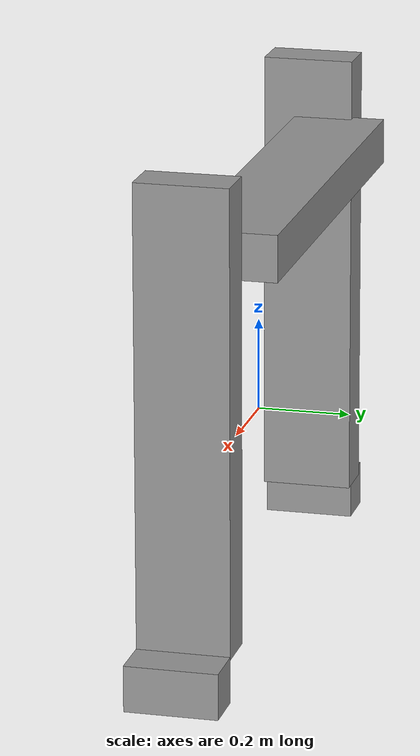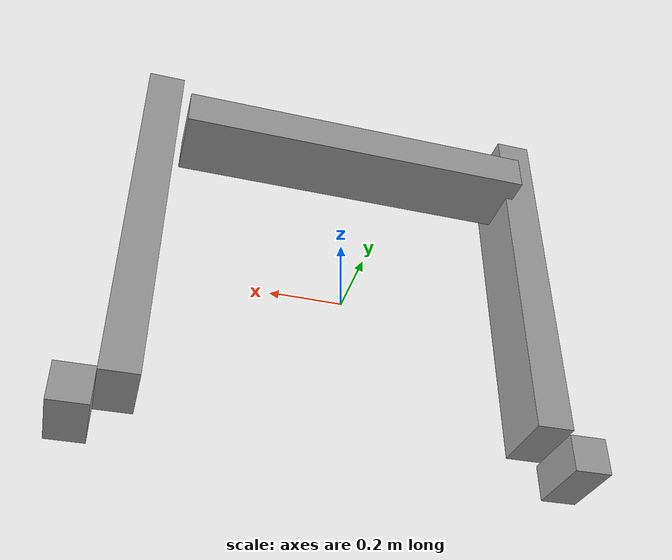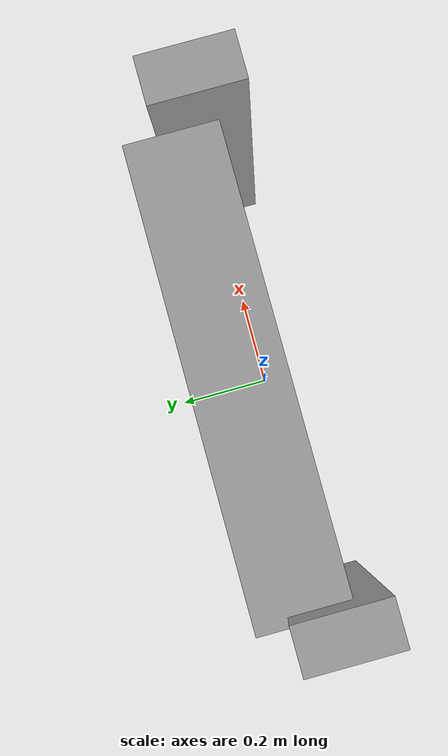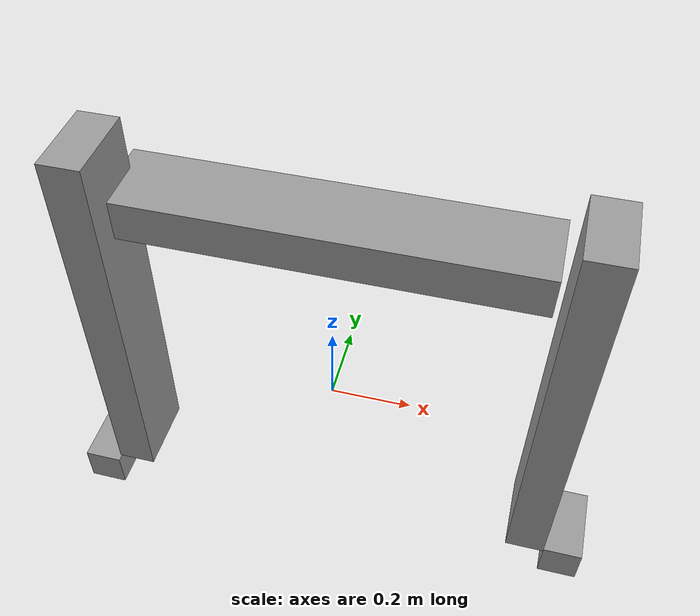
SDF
<?xml version='1.0'?>
<sdf version='1.6'>
  <model name='model'>
    <link name='link_0'>
      <pose frame=''>-0.018264 0.058854 0.476808 0 -0 0</pose>
      <inertial>
        <mass>1</mass>
        <inertia>
          <ixx>0.166667</ixx>
          <ixy>0</ixy>
          <ixz>0</ixz>
          <iyy>0.166667</iyy>
          <iyz>0</iyz>
          <izz>0.166667</izz>
        </inertia>
        <pose frame=''>0 0 0 0 -0 0</pose>
      </inertial>
      <gravity>1</gravity>
      <self_collide>0</self_collide>
      <kinematic>0</kinematic>
      <visual name='visual'>
        <pose frame=''>0 0 0 0 -0 0</pose>
        <geometry>
          <box>
            <size>1 0.2 0.1</size>
          </box>
        </geometry>
        <material>
          <lighting>1</lighting>
          <script>
            <uri>file://media/materials/scripts/gazebo.material</uri>
            <name>Gazebo/Grey</name>
          </script>
          <ambient>0.3 0.3 0.3 1</ambient>
          <diffuse>0.7 0.7 0.7 1</diffuse>
          <specular>0.01 0.01 0.01 1</specular>
          <emissive>0 0 0 1</emissive>
          <shader type='vertex'>
            <normal_map>__default__</normal_map>
          </shader>
        </material>
        <cast_shadows>1</cast_shadows>
        <transparency>0</transparency>
      </visual>
      <collision name='collision'>
        <laser_retro>0</laser_retro>
        <max_contacts>10</max_contacts>
        <pose frame=''>0 0 0 0 -0 0</pose>
        <geometry>
          <box>
            <size>1 0.2 0.1</size>
          </box>
        </geometry>
        <surface>
          <friction>
            <ode>
              <mu>1</mu>
              <mu2>1</mu2>
              <fdir1>0 0 0</fdir1>
              <slip1>0</slip1>
              <slip2>0</slip2>
            </ode>
            <torsional>
              <coefficient>1</coefficient>
              <patch_radius>0</patch_radius>
              <surface_radius>0</surface_radius>
              <use_patch_radius>1</use_patch_radius>
              <ode>
                <slip>0</slip>
              </ode>
            </torsional>
          </friction>
          <bounce>
            <restitution_coefficient>0</restitution_coefficient>
            <threshold>1e+06</threshold>
          </bounce>
          <contact>
            <collide_without_contact>0</collide_without_contact>
            <collide_without_contact_bitmask>1</collide_without_contact_bitmask>
            <collide_bitmask>1</collide_bitmask>
            <ode>
              <soft_cfm>0</soft_cfm>
              <soft_erp>0.2</soft_erp>
              <kp>1e+13</kp>
              <kd>1</kd>
              <max_vel>0.01</max_vel>
              <min_depth>0</min_depth>
            </ode>
            <bullet>
              <split_impulse>1</split_impulse>
              <split_impulse_penetration_threshold>-0.01</split_impulse_penetration_threshold>
              <soft_cfm>0</soft_cfm>
              <soft_erp>0.2</soft_erp>
              <kp>1e+13</kp>
              <kd>1</kd>
            </bullet>
          </contact>
        </surface>
      </collision>
    </link>
    <link name='link_0_clone'>
      <pose frame=''>0.554218 -0.010327 0.150666 0 -0 0</pose>
      <inertial>
        <mass>1</mass>
        <inertia>
          <ixx>0.166667</ixx>
          <ixy>0</ixy>
          <ixz>0</ixz>
          <iyy>0.166667</iyy>
          <iyz>0</iyz>
          <izz>0.166667</izz>
        </inertia>
        <pose frame=''>0 0 0 0 -0 0</pose>
      </inertial>
      <self_collide>0</self_collide>
      <kinematic>0</kinematic>
      <gravity>1</gravity>
      <visual name='visual'>
        <pose frame=''>0 0 0 0 1.57 0</pose>
        <geometry>
          <box>
            <size>1 0.2 0.1</size>
          </box>
        </geometry>
        <material>
          <lighting>1</lighting>
          <script>
            <uri>file://media/materials/scripts/gazebo.material</uri>
            <name>Gazebo/Grey</name>
          </script>
          <ambient>0.3 0.3 0.3 1</ambient>
          <diffuse>0.7 0.7 0.7 1</diffuse>
          <specular>0.01 0.01 0.01 1</specular>
          <emissive>0 0 0 1</emissive>
          <shader type='vertex'>
            <normal_map>__default__</normal_map>
          </shader>
        </material>
        <cast_shadows>1</cast_shadows>
        <transparency>0</transparency>
      </visual>
      <collision name='collision'>
        <laser_retro>0</laser_retro>
        <max_contacts>10</max_contacts>
        <pose frame=''>0 0 0 0 1.57 0</pose>
        <geometry>
          <box>
            <size>1 0.2 0.1</size>
          </box>
        </geometry>
        <surface>
          <friction>
            <ode>
              <mu>1</mu>
              <mu2>1</mu2>
              <fdir1>0 0 0</fdir1>
              <slip1>0</slip1>
              <slip2>0</slip2>
            </ode>
            <torsional>
              <coefficient>1</coefficient>
              <patch_radius>0</patch_radius>
              <surface_radius>0</surface_radius>
              <use_patch_radius>1</use_patch_radius>
              <ode>
                <slip>0</slip>
              </ode>
            </torsional>
          </friction>
          <bounce>
            <restitution_coefficient>0</restitution_coefficient>
            <threshold>1e+06</threshold>
          </bounce>
          <contact>
            <collide_without_contact>0</collide_without_contact>
            <collide_without_contact_bitmask>1</collide_without_contact_bitmask>
            <collide_bitmask>1</collide_bitmask>
            <ode>
              <soft_cfm>0</soft_cfm>
              <soft_erp>0.2</soft_erp>
              <kp>1e+13</kp>
              <kd>1</kd>
              <max_vel>0.01</max_vel>
              <min_depth>0</min_depth>
            </ode>
            <bullet>
              <split_impulse>1</split_impulse>
              <split_impulse_penetration_threshold>-0.01</split_impulse_penetration_threshold>
              <soft_cfm>0</soft_cfm>
              <soft_erp>0.2</soft_erp>
              <kp>1e+13</kp>
              <kd>1</kd>
            </bullet>
          </contact>
        </surface>
      </collision>
    </link>
    <link name='link_0_clone_clone'>
      <pose frame=''>-0.546578 -0.010327 0.158876 0 -0 0</pose>
      <inertial>
        <mass>1</mass>
        <inertia>
          <ixx>0.166667</ixx>
          <ixy>0</ixy>
          <ixz>0</ixz>
          <iyy>0.166667</iyy>
          <iyz>0</iyz>
          <izz>0.166667</izz>
        </inertia>
        <pose frame=''>0 0 0 0 -0 0</pose>
      </inertial>
      <self_collide>0</self_collide>
      <kinematic>0</kinematic>
      <visual name='visual'>
        <pose frame=''>0 0 0 0 1.57 0</pose>
        <geometry>
          <box>
            <size>1 0.2 0.1</size>
          </box>
        </geometry>
        <material>
          <lighting>1</lighting>
          <script>
            <uri>file://media/materials/scripts/gazebo.material</uri>
            <name>Gazebo/Grey</name>
          </script>
          <ambient>0.3 0.3 0.3 1</ambient>
          <diffuse>0.7 0.7 0.7 1</diffuse>
          <specular>0.01 0.01 0.01 1</specular>
          <emissive>0 0 0 1</emissive>
          <shader type='vertex'>
            <normal_map>__default__</normal_map>
          </shader>
        </material>
        <cast_shadows>1</cast_shadows>
        <transparency>0</transparency>
      </visual>
      <collision name='collision'>
        <laser_retro>0</laser_retro>
        <max_contacts>10</max_contacts>
        <pose frame=''>0 0 0 0 1.57 0</pose>
        <geometry>
          <box>
            <size>1 0.2 0.1</size>
          </box>
        </geometry>
        <surface>
          <friction>
            <ode>
              <mu>1</mu>
              <mu2>1</mu2>
              <fdir1>0 0 0</fdir1>
              <slip1>0</slip1>
              <slip2>0</slip2>
            </ode>
            <torsional>
              <coefficient>1</coefficient>
              <patch_radius>0</patch_radius>
              <surface_radius>0</surface_radius>
              <use_patch_radius>1</use_patch_radius>
              <ode>
                <slip>0</slip>
              </ode>
            </torsional>
          </friction>
          <bounce>
            <restitution_coefficient>0</restitution_coefficient>
            <threshold>1e+06</threshold>
          </bounce>
          <contact>
            <collide_without_contact>0</collide_without_contact>
            <collide_without_contact_bitmask>1</collide_without_contact_bitmask>
            <collide_bitmask>1</collide_bitmask>
            <ode>
              <soft_cfm>0</soft_cfm>
              <soft_erp>0.2</soft_erp>
              <kp>1e+13</kp>
              <kd>1</kd>
              <max_vel>0.01</max_vel>
              <min_depth>0</min_depth>
            </ode>
            <bullet>
              <split_impulse>1</split_impulse>
              <split_impulse_penetration_threshold>-0.01</split_impulse_penetration_threshold>
              <soft_cfm>0</soft_cfm>
              <soft_erp>0.2</soft_erp>
              <kp>1e+13</kp>
              <kd>1</kd>
            </bullet>
          </contact>
        </surface>
      </collision>
    </link>
    <link name='link_1'>
      <pose frame=''>0.654616 -0.010327 -0.392054 0 -0 0</pose>
      <inertial>
        <mass>1</mass>
        <inertia>
          <ixx>0.166667</ixx>
          <ixy>0</ixy>
          <ixz>0</ixz>
          <iyy>0.166667</iyy>
          <iyz>0</iyz>
          <izz>0.166667</izz>
        </inertia>
        <pose frame=''>0 0 0 0 -0 0</pose>
      </inertial>
      <gravity>1</gravity>
      <self_collide>0</self_collide>
      <kinematic>0</kinematic>
      <visual name='visual'>
        <pose frame=''>0 0 0 0 -0 0</pose>
        <geometry>
          <box>
            <size>0.1 0.2 0.1</size>
          </box>
        </geometry>
        <material>
          <lighting>1</lighting>
          <script>
            <uri>file://media/materials/scripts/gazebo.material</uri>
            <name>Gazebo/Grey</name>
          </script>
          <ambient>0.3 0.3 0.3 1</ambient>
          <diffuse>0.7 0.7 0.7 1</diffuse>
          <specular>0.01 0.01 0.01 1</specular>
          <emissive>0 0 0 1</emissive>
          <shader type='vertex'>
            <normal_map>__default__</normal_map>
          </shader>
        </material>
        <cast_shadows>1</cast_shadows>
        <transparency>0</transparency>
      </visual>
      <collision name='collision'>
        <laser_retro>0</laser_retro>
        <max_contacts>10</max_contacts>
        <pose frame=''>0 0 0 0 -0 0</pose>
        <geometry>
          <box>
            <size>0.1 0.2 0.1</size>
          </box>
        </geometry>
        <surface>
          <friction>
            <ode>
              <mu>1</mu>
              <mu2>1</mu2>
              <fdir1>0 0 0</fdir1>
              <slip1>0</slip1>
              <slip2>0</slip2>
            </ode>
            <torsional>
              <coefficient>1</coefficient>
              <patch_radius>0</patch_radius>
              <surface_radius>0</surface_radius>
              <use_patch_radius>1</use_patch_radius>
              <ode>
                <slip>0</slip>
              </ode>
            </torsional>
          </friction>
          <bounce>
            <restitution_coefficient>0</restitution_coefficient>
            <threshold>1e+06</threshold>
          </bounce>
          <contact>
            <collide_without_contact>0</collide_without_contact>
            <collide_without_contact_bitmask>1</collide_without_contact_bitmask>
            <collide_bitmask>1</collide_bitmask>
            <ode>
              <soft_cfm>0</soft_cfm>
              <soft_erp>0.2</soft_erp>
              <kp>1e+13</kp>
              <kd>1</kd>
              <max_vel>0.01</max_vel>
              <min_depth>0</min_depth>
            </ode>
            <bullet>
              <split_impulse>1</split_impulse>
              <split_impulse_penetration_threshold>-0.01</split_impulse_penetration_threshold>
              <soft_cfm>0</soft_cfm>
              <soft_erp>0.2</soft_erp>
              <kp>1e+13</kp>
              <kd>1</kd>
            </bullet>
          </contact>
        </surface>
      </collision>
    </link>
    <link name='link_1_clone'>
      <pose frame=''>-0.643999 -0.027874 -0.394296 0 -0 0</pose>
      <inertial>
        <mass>1</mass>
        <inertia>
          <ixx>0.166667</ixx>
          <ixy>0</ixy>
          <ixz>0</ixz>
          <iyy>0.166667</iyy>
          <iyz>0</iyz>
          <izz>0.166667</izz>
        </inertia>
        <pose frame=''>0 0 0 0 -0 0</pose>
      </inertial>
      <self_collide>0</self_collide>
      <kinematic>0</kinematic>
      <visual name='visual'>
        <pose frame=''>0 0 0 0 -0 0</pose>
        <geometry>
          <box>
            <size>0.1 0.2 0.1</size>
          </box>
        </geometry>
        <material>
          <lighting>1</lighting>
          <script>
            <uri>file://media/materials/scripts/gazebo.material</uri>
            <name>Gazebo/Grey</name>
          </script>
          <ambient>0.3 0.3 0.3 1</ambient>
          <diffuse>0.7 0.7 0.7 1</diffuse>
          <specular>0.01 0.01 0.01 1</specular>
          <emissive>0 0 0 1</emissive>
          <shader type='vertex'>
            <normal_map>__default__</normal_map>
          </shader>
        </material>
        <cast_shadows>1</cast_shadows>
        <transparency>0</transparency>
      </visual>
      <collision name='collision'>
        <laser_retro>0</laser_retro>
        <max_contacts>10</max_contacts>
        <pose frame=''>0 0 0 0 -0 0</pose>
        <geometry>
          <box>
            <size>0.1 0.2 0.1</size>
          </box>
        </geometry>
        <surface>
          <friction>
            <ode>
              <mu>1</mu>
              <mu2>1</mu2>
              <fdir1>0 0 0</fdir1>
              <slip1>0</slip1>
              <slip2>0</slip2>
            </ode>
            <torsional>
              <coefficient>1</coefficient>
              <patch_radius>0</patch_radius>
              <surface_radius>0</surface_radius>
              <use_patch_radius>1</use_patch_radius>
              <ode>
                <slip>0</slip>
              </ode>
            </torsional>
          </friction>
          <bounce>
            <restitution_coefficient>0</restitution_coefficient>
            <threshold>1e+06</threshold>
          </bounce>
          <contact>
            <collide_without_contact>0</collide_without_contact>
            <collide_without_contact_bitmask>1</collide_without_contact_bitmask>
            <collide_bitmask>1</collide_bitmask>
            <ode>
              <soft_cfm>0</soft_cfm>
              <soft_erp>0.2</soft_erp>
              <kp>1e+13</kp>
              <kd>1</kd>
              <max_vel>0.01</max_vel>
              <min_depth>0</min_depth>
            </ode>
            <bullet>
              <split_impulse>1</split_impulse>
              <split_impulse_penetration_threshold>-0.01</split_impulse_penetration_threshold>
              <soft_cfm>0</soft_cfm>
              <soft_erp>0.2</soft_erp>
              <kp>1e+13</kp>
              <kd>1</kd>
            </bullet>
          </contact>
        </surface>
      </collision>
    </link>
    <joint name='link_0_JOINT_1' type='revolute'>
      <parent>link_0</parent>
      <child>link_0_clone</child>
      <pose frame=''>0 0 0.3 0 -0 0</pose>
      <axis>
        <xyz>1 0 0</xyz>
        <use_parent_model_frame>0</use_parent_model_frame>
        <limit>
          <lower>-1.79769e+308</lower>
          <upper>1.79769e+308</upper>
          <effort>-1</effort>
          <velocity>-1</velocity>
        </limit>
        <dynamics>
          <spring_reference>0</spring_reference>
          <spring_stiffness>0</spring_stiffness>
          <damping>0</damping>
        </dynamics>
      </axis>
      <physics>
        <ode>
          <limit>
            <cfm>0</cfm>
            <erp>0.2</erp>
          </limit>
          <suspension>
            <cfm>0</cfm>
            <erp>0.2</erp>
          </suspension>
        </ode>
      </physics>
    </joint>
    <joint name='link_0_JOINT_2' type='revolute'>
      <parent>link_0</parent>
      <child>link_0_clone_clone</child>
      <pose frame=''>0 0 0.3 0 -0 0</pose>
      <axis>
        <xyz>1 0 0</xyz>
        <use_parent_model_frame>0</use_parent_model_frame>
        <limit>
          <lower>-1.79769e+308</lower>
          <upper>1.79769e+308</upper>
          <effort>-1</effort>
          <velocity>-1</velocity>
        </limit>
        <dynamics>
          <spring_reference>0</spring_reference>
          <spring_stiffness>0</spring_stiffness>
          <damping>0</damping>
        </dynamics>
      </axis>
      <physics>
        <ode>
          <limit>
            <cfm>0</cfm>
            <erp>0.2</erp>
          </limit>
          <suspension>
            <cfm>0</cfm>
            <erp>0.2</erp>
          </suspension>
        </ode>
      </physics>
    </joint>
    <joint name='link_0_clone_JOINT_3' type='revolute'>
      <parent>link_0_clone</parent>
      <child>link_1</child>
      <pose frame=''>0 0 0 0 -0 0</pose>
      <axis>
        <xyz>1 0 0</xyz>
        <use_parent_model_frame>0</use_parent_model_frame>
        <limit>
          <lower>-1.79769e+308</lower>
          <upper>1.79769e+308</upper>
          <effort>-1</effort>
          <velocity>-1</velocity>
        </limit>
        <dynamics>
          <spring_reference>0</spring_reference>
          <spring_stiffness>0</spring_stiffness>
          <damping>0</damping>
        </dynamics>
      </axis>
      <physics>
        <ode>
          <limit>
            <cfm>0</cfm>
            <erp>0.2</erp>
          </limit>
          <suspension>
            <cfm>0</cfm>
            <erp>0.2</erp>
          </suspension>
        </ode>
      </physics>
    </joint>
    <joint name='link_0_clone_clone_JOINT_4' type='revolute'>
      <parent>link_0_clone_clone</parent>
      <child>link_1_clone</child>
      <pose frame=''>0 0 0 0 -0 0</pose>
      <axis>
        <xyz>1 0 0</xyz>
        <use_parent_model_frame>0</use_parent_model_frame>
        <limit>
          <lower>-1.79769e+308</lower>
          <upper>1.79769e+308</upper>
          <effort>-1</effort>
          <velocity>-1</velocity>
        </limit>
        <dynamics>
          <spring_reference>0</spring_reference>
          <spring_stiffness>0</spring_stiffness>
          <damping>0</damping>
        </dynamics>
      </axis>
      <physics>
        <ode>
          <limit>
            <cfm>0</cfm>
            <erp>0.2</erp>
          </limit>
          <suspension>
            <cfm>0</cfm>
            <erp>0.2</erp>
          </suspension>
        </ode>
      </physics>
    </joint>
    <static>0</static>
    <allow_auto_disable>1</allow_auto_disable>
  </model>
</sdf>
